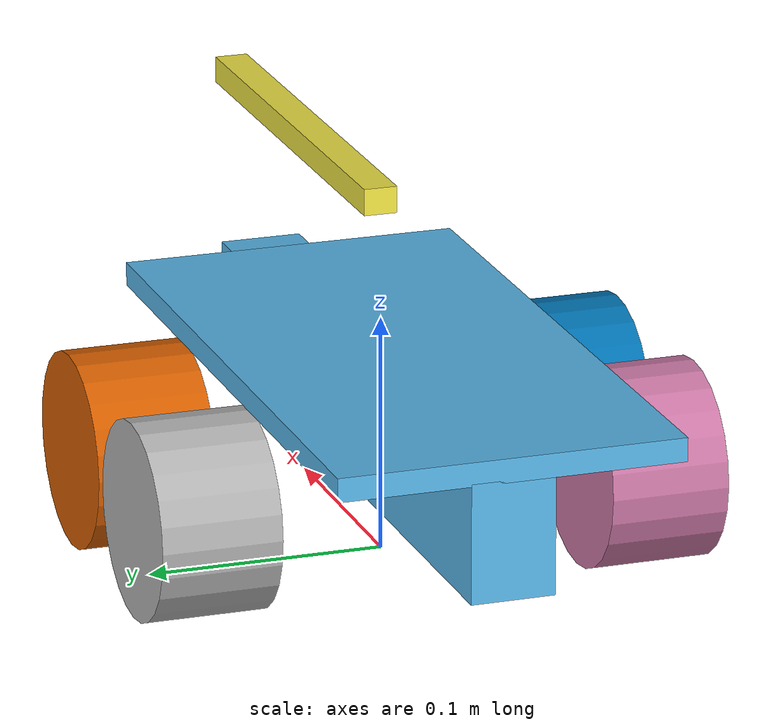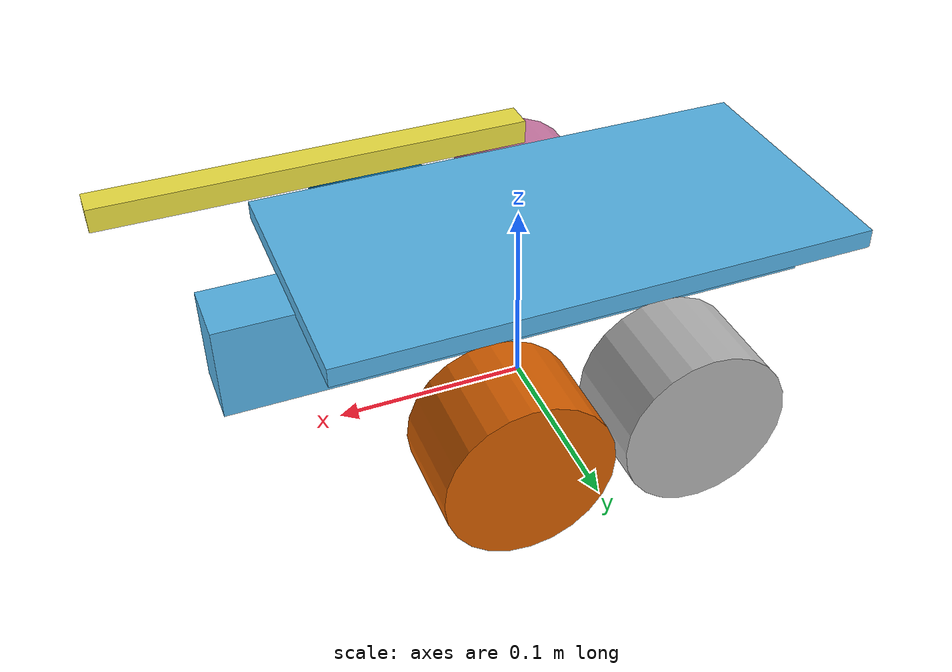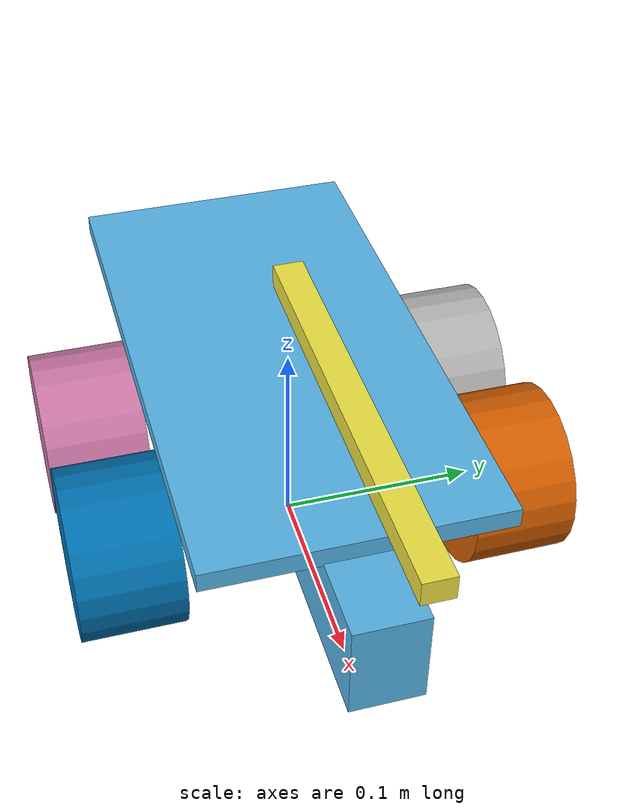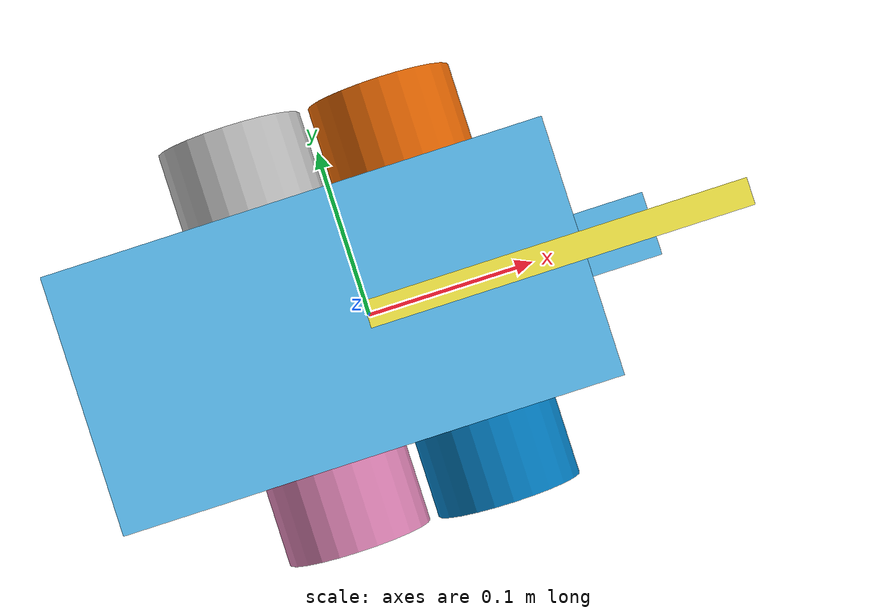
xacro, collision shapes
<?xml version="1.0"?>
<robot xmlns:xacro="http://www.ros.org/wiki/xacro" name="tank">

	<xacro:property name="cube_c" value="${1/12}"/>

	<!-- Footprint -->

	<link name="base_footprint"/>

	<joint name="base_joint" type="fixed">
		<parent link="base_footprint"/>
		<child link="base_link"/>
		<origin rpy="0 0 0" xyz="0 0 0"/>
	</joint>

  	<!-- Chassis -->

	<xacro:property name="ch_d" value="0.035"/>
	<xacro:property name="ch_w" value="0.32"/>
	<xacro:property name="ch_h" value="0.05"/>
	<xacro:property name="ch_m" value="1.2"/>

	<link name='base_link'>
		<inertial>
			<origin rpy="0 0 0" xyz="0 0 0.06"/>
			<mass value="${ch_m}"/>
			<inertia ixx="${cube_c*ch_m*(ch_h*ch_h + ch_d*ch_d)}" ixy="0.0" ixz="0.0"
					 iyy="${cube_c*ch_m*(ch_w*ch_w + ch_h*ch_h)}" iyz="0.0"
					 izz="${cube_c*ch_m*(ch_w*ch_w + ch_d*ch_d)}"/>
		</inertial>

		<collision name='collision_top'>
			<geometry>
				<box size="0.28 0.1445 0.01"/>
			</geometry>
			<origin rpy="0 0 0" xyz="-0.02 0 0.089"/>
		</collision>

		<collision name='collision_bottom'>
			<geometry>
				<box size="${ch_w} ${ch_d} ${ch_h}"/>
			</geometry>
			<origin rpy="0 0 0" xyz="0 0 0.06"/>
		</collision>

		<visual name='visual'>
			<origin rpy="0 0 ${pi/2}" xyz="0.0 0 0.0"/>
			<geometry>
				<mesh filename="package://tank_robot/meshes/body_with_cats.dae"/>
			</geometry>
		</visual>
	</link>

	<gazebo reference="base_link">
		<self_collide>1</self_collide>
	</gazebo>

	<!-- Caster wheel -->

	<!-- Wheels -->

	<xacro:macro name="wheel" params="side dae y_sign x r z ix iy iz collision_mul">
		<link name="${side}_wheel">
			<inertial>
				<origin rpy="0 0 0" xyz="0.0 ${y_sign}0.0475 0.0"/>
				<mass value="0.1"/>
				<inertia ixx="${ix}" ixy="0.0" ixz="0.0" iyy="${iy}" iyz="0.0" izz="${iz}"/>
			</inertial>

			<collision name='collision'>
				<geometry>
					<cylinder length="${0.05*collision_mul}" radius="${r*collision_mul}"/>
				</geometry>
				<origin rpy="${pi/2} 0 0" xyz="0.0 ${y_sign}0.0475 0.0"/>
			</collision>

			<visual name='visual'>
				<geometry>
					<mesh filename="package://tank_robot/meshes/${dae}_wheel.dae"/>
				</geometry>
				<origin rpy="0 0 ${pi/2}" xyz="0.0 0.0 ${z}"/>
			</visual>
		</link>

		<joint name="${side}_wheel_joint" type="continuous">
			<parent link="base_link"/>
			<child link="${side}_wheel"/>
			<origin rpy="0 0 0" xyz="${x} ${y_sign}0.0475  ${r}"/>
			<axis xyz="0.0 1.0 0.0"/>
		</joint>

		<gazebo reference="${side}_wheel">
			<self_collide>1</self_collide>
			<mu1 value="200.0"/>
			<mu2 value="100.0"/>
			<kp value="10000000.0" />
			<kd value="100.0" />
		</gazebo>

		<transmission name="${side}_wheel_trans">
			<type>transmission_interface/SimpleTransmission</type>
			<actuator name="${side}_wheel_motor">
				<mechanicalReduction>1</mechanicalReduction>
			</actuator>
			<joint name="${side}_wheel_joint">
				<hardwareInterface>hardware_interface/VelocityJointInterface</hardwareInterface>
			</joint>
		</transmission>

	</xacro:macro>

	<xacro:wheel side="rear_right" dae="rear_right" y_sign="-" x="-0.12" r="0.0414" z="-0.0389" ix="0.000064" iy="0.000086" iz="0.000064" collision_mul="0"/>
	<xacro:wheel side="rear_left" dae="rear_left" y_sign="+" x="-0.12" r="0.0414" z="-0.0389" ix="0.000064" iy="0.000086" iz="0.000064" collision_mul="0"/>

	<xacro:wheel side="middle1_right" dae="none" y_sign="-" x="0.044" r="0.0414" z="-0.0389" ix="0.000064" iy="0.000086" iz="0.000064" collision_mul="1"/>
	<xacro:wheel side="middle1_left" dae="none" y_sign="+" x="0.044" r="0.0414" z="-0.0389" ix="0.000064" iy="0.000086" iz="0.000064" collision_mul="1"/>

	<xacro:wheel side="middle2_right" dae="none" y_sign="-" x="-0.044" r="0.0414" z="-0.0389" ix="0.000064" iy="0.000086" iz="0.000064" collision_mul="1"/>
	<xacro:wheel side="middle2_left" dae="none" y_sign="+" x="-0.044" r="0.0414" z="-0.0389" ix="0.000064" iy="0.000086" iz="0.000064" collision_mul="1"/>

	<xacro:wheel side="front_right" dae="front" y_sign="-" x="0.115" r="0.0408885" z="-0.0326285" ix="0.000063" iy="0.000084" iz="0.000063" collision_mul="0"/>
	<xacro:wheel side="front_left" dae="front" y_sign="+" x="0.115" r="0.0408885" z="-0.0326285" ix="0.000063" iy="0.000084" iz="0.000063" collision_mul="0"/>

	<!-- Turret -->

	<link name='turret'>
		<inertial>
			<mass value="0.05"/>
			<inertia ixx="0.000031" ixy="0.0" ixz="0.0" iyy="0.000031" iyz="0.0" izz="0.000062"/>
		</inertial>

		<visual name='visual'>
			<geometry>
				<mesh filename="package://tank_robot/meshes/turret.dae"/>
			</geometry>
			<origin rpy="0 0 ${pi/2}" xyz="0 0 -0.005"/>
		</visual>
	</link>

	<joint name="turret_joint" type="continuous">
		<parent link="base_link"/>
		<child link="turret"/>
		<origin rpy="0 0 0" xyz="0 0 0.1"/>
		<axis xyz="0.0 0.0 1.0"/>
		<limit effort="30" velocity="${pi}"/>
		<dynamics damping="0.1"/>
	</joint>

	<transmission name="turret_trans">
		<type>transmission_interface/SimpleTransmission</type>
		<actuator name="$turret_motor">
			<hardwareInterface>hardware_interface/VelocityJointInterface</hardwareInterface>
			<mechanicalReduction>1</mechanicalReduction>
		</actuator>
		<joint name="turret_joint">
			<hardwareInterface>hardware_interface/VelocityJointInterface</hardwareInterface>
		</joint>
	</transmission>

	<!-- Gun -->
	<xacro:property name="g_d" value="0.0563"/>
	<xacro:property name="g_w" value="0.4"/>
	<xacro:property name="g_h" value="0.09"/>
	<xacro:property name="g_m" value="0.4"/>

	<link name='gun'>
		<inertial>
			<origin rpy="0 0 0" xyz="0 0.0 0.04"/>
			<mass value="${g_m}"/>
			<inertia ixx="${cube_c*g_m*(g_h*g_h + g_d*g_d)}" ixy="0.0" ixz="0.0"
					 iyy="${cube_c*g_m*(g_w*g_w*4/9 + g_h*g_h)}" iyz="0.0"
					 izz="${cube_c*g_m*(g_w*g_w*4/9 + g_d*g_d)}"/>
		</inertial>

		<collision name="collision">
			<geometry>
				<box size="${g_w/2} ${g_d/4} ${g_h/8}"/>
			</geometry>
			<origin rpy="0 0 0" xyz="0.1 0 0.04"/>
		</collision>

		<visual name='visual'>
			<geometry>
				<mesh filename="package://tank_robot/meshes/gun.dae"/>
			</geometry>
			<origin rpy="0 0 ${pi/2}" xyz="0.055 0 -0.01"/>
		</visual>
	</link>

	<gazebo reference="gun">
		<self_collide>1</self_collide>
	</gazebo>

	<joint name="gun_joint" type="revolute">
		<parent link="turret"/>
		<child link="gun"/>
		<origin xyz="0 0 .01"/>
		<axis xyz="0.0 1.0 0.0"/>
		<dynamics damping="0.0" friction="20.0"/>
		<limit lower="${-pi}" upper="${pi}" effort="30" velocity="${pi/6}"/>
		<dynamics damping="0.1"/>
	</joint>

	<transmission name="gun_trans">
		<type>transmission_interface/SimpleTransmission</type>
		<actuator name="$gun_motor">
			<hardwareInterface>hardware_interface/VelocityJointInterface</hardwareInterface>
			<mechanicalReduction>1</mechanicalReduction>
		</actuator>
		<joint name="gun_joint">
			<hardwareInterface>hardware_interface/VelocityJointInterface</hardwareInterface>
		</joint>
	</transmission>

	 <!-- Gun Tip -->
	<link name="gun_tip_link">
	</link>

	<joint name="gun_tip_joint" type="fixed">
		<parent link="gun"/>
		<child link="gun_tip_link"/>
		<origin xyz="0.255 0  0.042" rpy="0 0 0"/> <!-- Position at the end of the gun barrel -->
	</joint>

	<!-- Camera, Lidar, Imu -->

	<!-- ROS Control Plugin -->
	<gazebo>
		<plugin name="gazebo_ros_control" filename="libgazebo_ros_control.so">
			<robotNamespace>/</robotNamespace>
		</plugin>

  	</gazebo>

</robot>
